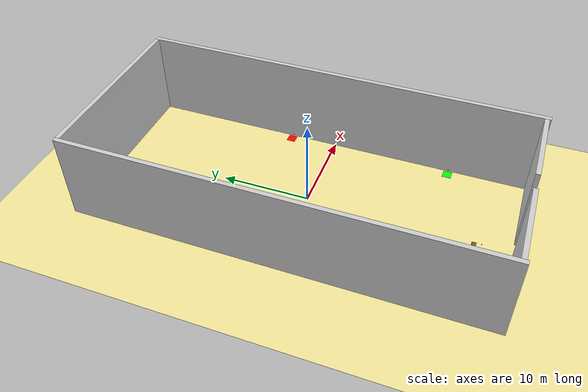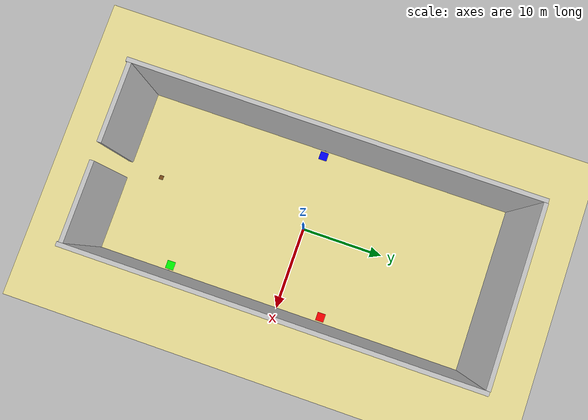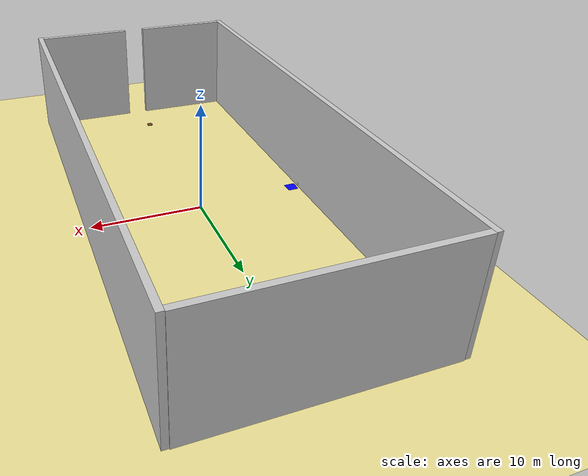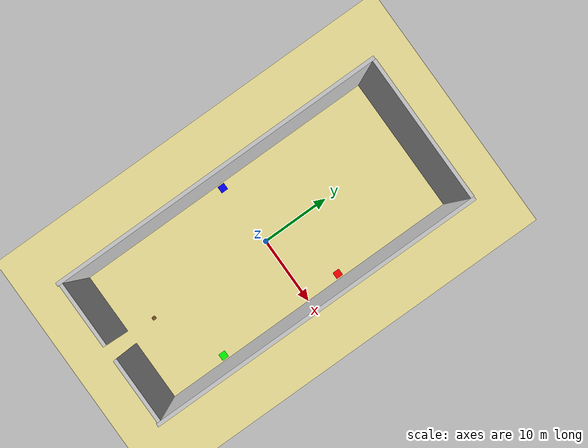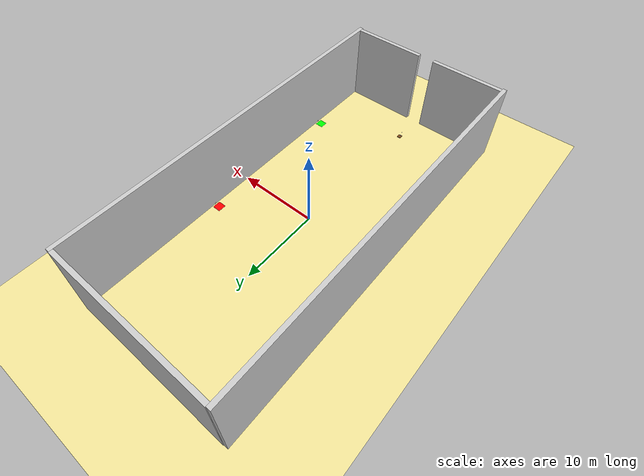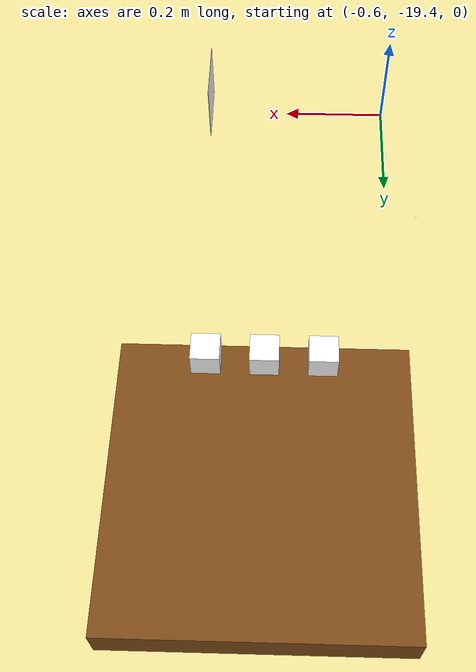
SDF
<sdf version="1.4">
 <world name="warehouse">
  <include><uri>https://fuel.gazebosim.org/1.0/OpenRobotics/models/Sun</uri></include>
  <model name="custom_ground_plane">
   <static>true</static>
   <link name="link">
    <collision name="collision">
     <geometry><plane><normal>0 0 1</normal><size>100 100</size></plane></geometry>
     <surface><friction><ode><mu>100</mu><mu2>50</mu2></ode></friction></surface>
    </collision>
    <visual name="visual">
     <geometry><plane><normal>0 0 1</normal><size>100 100</size></plane></geometry>
     <material>
      <ambient>0.95 0.9 0.6 1</ambient>
      <diffuse>0.95 0.9 0.6 1</diffuse>
      <specular>0.1 0.1 0.1 1</specular>
     </material>
    </visual>
   </link>
  </model>
  <model name="wall_north">
   <static>1</static>
   <pose>0 22.96 5.0 0 0 0</pose>
   <link name="link">
    <collision name="collision"><geometry><box><size>20 0.5 10</size></box></geometry></collision>
    <visual name="visual">
     <geometry><box><size>20 0.5 10</size></box></geometry>
     <material><ambient>0.8 0.8 0.8 1</ambient><diffuse>0.8 0.8 0.8 1</diffuse></material>
    </visual>
   </link>
  </model>
  <model name="wall_south_1">
   <static>1</static>
   <pose>-5.5 -22.73 5.0 0 0 0</pose>
   <link name="link">
    <collision name="collision"><geometry><box><size>9 0.5 10</size></box></geometry></collision>
    <visual name="visual">
     <geometry><box><size>9 0.5 10</size></box></geometry>
     <material><ambient>0.8 0.8 0.8 1</ambient><diffuse>0.8 0.8 0.8 1</diffuse></material>
    </visual>
   </link>
  </model>
  <model name="wall_south_2">
   <static>1</static>
   <pose>5.5 -22.73 5.0 0 0 0</pose>
   <link name="link">
    <collision name="collision"><geometry><box><size>9 0.5 10</size></box></geometry></collision>
    <visual name="visual">
     <geometry><box><size>9 0.5 10</size></box></geometry>
     <material><ambient>0.8 0.8 0.8 1</ambient><diffuse>0.8 0.8 0.8 1</diffuse></material>
    </visual>
   </link>
  </model>
  <model name="wall_east">
   <static>1</static>
   <pose>10.25 0.0 5.0 0 0 0</pose>
   <link name="link">
    <collision name="collision"><geometry><box><size>0.5 46.3 10</size></box></geometry></collision>
    <visual name="visual">
     <geometry><box><size>0.5 46.3 10</size></box></geometry>
     <material><ambient>0.8 0.8 0.8 1</ambient><diffuse>0.8 0.8 0.8 1</diffuse></material>
    </visual>
   </link>
  </model>
  <model name="wall_west">
   <static>1</static>
   <pose>-10.25 0 5.0 0 0 0</pose>
   <link name="link">
    <collision name="collision"><geometry><box><size>0.5 46.3 10</size></box></geometry></collision>
    <visual name="visual">
     <geometry><box><size>0.5 46.3 10</size></box></geometry>
     <material><ambient>0.8 0.8 0.8 1</ambient><diffuse>0.8 0.8 0.8 1</diffuse></material>
    </visual>
   </link>
  </model>
  <model name="platform_1">
   <static>1</static>
   <pose>9.35 5.42 -0.001 0 0 0</pose>
   <link name="link">
    <visual name="visual">
     <geometry><box><size>1 1 0.01</size></box></geometry>
     <material><ambient>1 0 0 1</ambient><diffuse>1 0 0 1</diffuse></material>
    </visual>
   </link>
  </model>
  <model name="platform_2">
   <static>1</static>
   <pose>9.35 -13.79 -0.001 0 0 0</pose>
   <link name="link">
    <visual name="visual">
     <geometry><box><size>1 1 0.01</size></box></geometry>
     <material><ambient>0 1 0 1</ambient><diffuse>0 1 0 1</diffuse></material>
    </visual>
   </link>
  </model>
  <model name="platform_3">
   <static>1</static>
   <pose>-9.35 -0.54 -0.001 0 0 0</pose>
   <link name="link">
    <visual name="visual">
     <geometry><box><size>1 1 0.01</size></box></geometry>
     <material><ambient>0 0 1 1</ambient><diffuse>0 0 1 1</diffuse></material>
    </visual>
   </link>
  </model>
  <model name="aruco_platform">
   <static>1</static>
   <pose>-0.37 -18.53 0.0375 0 0 0</pose>
   <link name="link">
    <visual name="visual">
     <geometry><box><size>0.5 0.5 0.075</size></box></geometry>
     <material><ambient>0.5 0.3 0.1 1</ambient><diffuse>0.5 0.3 0.1 1</diffuse></material>
    </visual>
    <collision name="collision"><geometry><box><size>0.5 0.5 0.075</size></box></geometry></collision>
   </link>
  </model>
  <include>
   <name>box_medicine</name>
   <uri>model://aruco_tag_med</uri>
   <pose>-0.47 -18.75 0.10 0 0 0</pose>
  </include>
  <include><name>box_toys</name><uri>model://aruco_tag_toys</uri><pose>-0.37 -18.75 0.10 0 0 0</pose></include>
  <include>
   <name>box_clothes</name>
   <uri>model://aruco_tag_clothes</uri>
   <pose>-0.27 -18.75 0.10 0 0 0</pose>
  </include>
  <include><uri>model://aruco_iiwa</uri><name>aruco_iiwa</name><pose>-0.25 -19.31 0.15 0 1.57 0</pose></include>
  <include><uri>model://aruco_red</uri><name>aruco_red</name><pose>9.95 5.42 0.2 -0.25 1.57 0</pose></include>
  <include>
   <uri>model://aruco_green</uri>
   <name>aruco_green</name>
   <pose>9.95 -13.79 0.2 -0.25 1.57 0</pose>
  </include>
  <include><uri>model://aruco_blue</uri><name>aruco_blue</name><pose>-10.0 -0.54 0.2 0 1.57 0</pose></include>
 </world>
</sdf>

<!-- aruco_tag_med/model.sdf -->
<sdf version="1.9">
  <model name="aruco_tag_med">
    <static>false</static> <!-- Mettiamo false così iiwa può spostarlo -->
    <link name="ee_1">
      <!-- Inerzia: necessaria se l'oggetto non è statico -->
      <inertial>
        <mass>0.1</mass>
        <inertia>
          <ixx>0.00004</ixx>
          <ixy>0</ixy>
          <ixz>0</ixz>
          <iyy>0.00004</iyy>
          <iyz>0</iyz>
          <izz>0.00004</izz>
        </inertia>
      </inertial>

      <visual name="box_visual">
        <geometry>
          <box>
            <size>0.05 0.05 0.05</size>
          </box>
        </geometry>
        <material>
          <ambient>1 1 1 1</ambient>
          <diffuse>1 1 1 1</diffuse>
          <pbr>
            <metal>
              <albedo_map>model://aruco_tag_med/aruco-1.png</albedo_map>
            </metal>
          </pbr>
        </material>
      </visual>

      <collision name="box_collision">
        <geometry>
          <box>
            <size>0.05 0.05 0.05</size>
          </box>
        </geometry>
        <surface>
          <friction>
            <ode>
              <mu>1.0</mu>
              <mu2>1.0</mu2>
            </ode>
          </friction>
        </surface>
      </collision>
    </link>
  </model>
</sdf>

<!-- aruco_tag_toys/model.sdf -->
<sdf version="1.9">
  <model name="aruco_tag_toys">
    <static>false</static> <!-- Mettiamo false così iiwa può spostarlo -->
    <link name="ee_2">
      <!-- Inerzia: necessaria se l'oggetto non è statico -->
      <inertial>
        <mass>0.1</mass>
        <inertia>
          <ixx>0.00004</ixx>
          <ixy>0</ixy>
          <ixz>0</ixz>
          <iyy>0.00004</iyy>
          <iyz>0</iyz>
          <izz>0.00004</izz>
        </inertia>
      </inertial>

      <visual name="box_visual">
        <geometry>
          <box>
            <size>0.05 0.05 0.05</size>
          </box>
        </geometry>
        <material>
          <ambient>1 1 1 1</ambient>
          <diffuse>1 1 1 1</diffuse>
          <pbr>
            <metal>
              <albedo_map>model://aruco_tag_toys/aruco-2.png</albedo_map>
            </metal>
          </pbr>
        </material>
      </visual>

      <collision name="box_collision">
        <geometry>
          <box>
            <size>0.05 0.05 0.05</size>
          </box>
        </geometry>
        <surface>
          <friction>
            <ode>
              <mu>1.0</mu>
              <mu2>1.0</mu2>
            </ode>
          </friction>
        </surface>
      </collision>
    </link>
  </model>
</sdf>

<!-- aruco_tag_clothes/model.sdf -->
<sdf version="1.9">
  <model name="aruco_tag_clothes">
    <static>false</static> <!-- Mettiamo false così iiwa può spostarlo -->
    <link name="ee_3">
      <inertial>
        <mass>0.1</mass>
        <inertia>
          <ixx>0.00004</ixx>
          <ixy>0</ixy>
          <ixz>0</ixz>
          <iyy>0.00004</iyy>
          <iyz>0</iyz>
          <izz>0.00004</izz>
        </inertia>
      </inertial>

      <visual name="box_visual">
        <geometry>
          <box>
            <size>0.05 0.05 0.05</size>
          </box>
        </geometry>
        <material>
          <ambient>1 1 1 1</ambient>
          <diffuse>1 1 1 1</diffuse>
          <pbr>
            <metal>
              <albedo_map>model://aruco_tag_clothes/aruco-3.png</albedo_map>
            </metal>
          </pbr>
        </material>
      </visual>

      <collision name="box_collision">
        <geometry>
          <box>
            <size>0.05 0.05 0.05</size>
          </box>
        </geometry>
        <surface>
          <friction>
            <ode>
              <mu>1.0</mu>
              <mu2>1.0</mu2>
            </ode>
          </friction>
        </surface>
      </collision>
    </link>
  </model>
</sdf>

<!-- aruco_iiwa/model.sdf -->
<sdf version="1.9">
  <model name="aruco_iiwa">
    <static>true</static>
    <link name="base">
      <visual name="tag_visual">
        <geometry>
          <box>
            <size>0.12 0.12 0.001</size>
          </box>
        </geometry>
        <material>
          <ambient>1 1 1 1</ambient>
          <diffuse>1 1 1 1</diffuse>
          <pbr>
            <metal>
              <albedo_map>model://aruco_iiwa/aruco-11.png</albedo_map>
            </metal>
          </pbr>
        </material>
      </visual>
      <collision name="tag_collision">
        <geometry>
          <box>
            <size>0.1 0.1 0.001</size>
          </box>
        </geometry>
      </collision>
    </link>
  </model>
</sdf>

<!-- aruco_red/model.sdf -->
<sdf version="1.9">
  <model name="aruco_red">
    <static>true</static>
    <link name="base">
      <visual name="tag_visual">
        <geometry>
          <box>
            <size>0.2 0.2 0.001</size>
          </box>
        </geometry>
        <material>
          <ambient>1 1 1 1</ambient>
          <diffuse>1 1 1 1</diffuse>
          <pbr>
            <metal>
              <albedo_map>model://aruco_red/aruco-12.png</albedo_map>
            </metal>
          </pbr>
        </material>
      </visual>
      <collision name="tag_collision">
        <geometry>
          <box>
            <size>0.1 0.1 0.001</size>
          </box>
        </geometry>
      </collision>
    </link>
  </model>
</sdf>

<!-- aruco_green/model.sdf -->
<sdf version="1.9">
  <model name="aruco_green">
    <static>true</static>
    <link name="base">
      <visual name="tag_visual">
        <geometry>
          <box>
            <size>0.2 0.2 0.001</size>
          </box>
        </geometry>
        <material>
          <ambient>1 1 1 1</ambient>
          <diffuse>1 1 1 1</diffuse>
          <pbr>
            <metal>
              <albedo_map>model://aruco_green/aruco-13.png</albedo_map>
            </metal>
          </pbr>
        </material>
      </visual>
      <collision name="tag_collision">
        <geometry>
          <box>
            <size>0.1 0.1 0.001</size>
          </box>
        </geometry>
      </collision>
    </link>
  </model>
</sdf>

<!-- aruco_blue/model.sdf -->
<sdf version="1.9">
  <model name="aruco_blue">
    <static>true</static>
    <link name="base">
      <visual name="tag_visual">
        <geometry>
          <box>
            <size>0.2 0.2 0.001</size>
          </box>
        </geometry>
        <material>
          <ambient>1 1 1 1</ambient>
          <diffuse>1 1 1 1</diffuse>
          <pbr>
            <metal>
              <albedo_map>model://aruco_blue/aruco-14.png</albedo_map>
            </metal>
          </pbr>
        </material>
      </visual>
      <collision name="tag_collision">
        <geometry>
          <box>
            <size>0.1 0.1 0.001</size>
          </box>
        </geometry>
      </collision>
    </link>
  </model>
</sdf>
